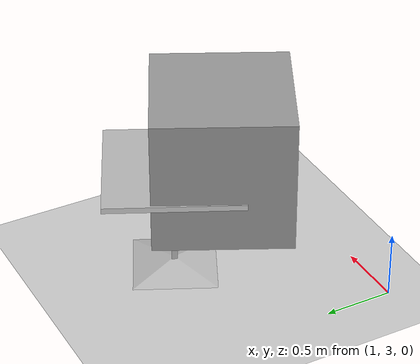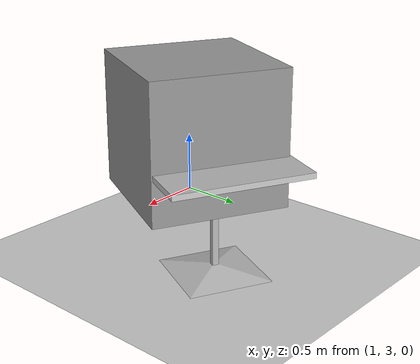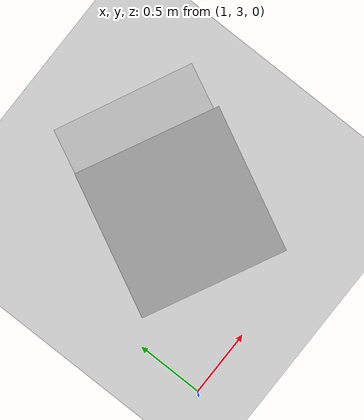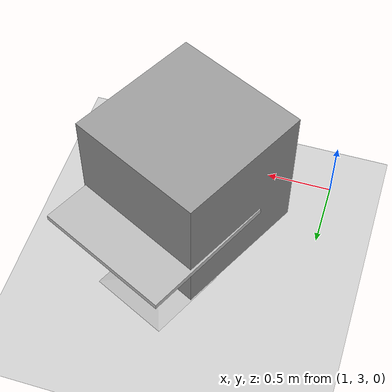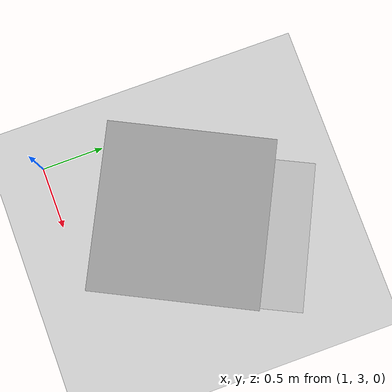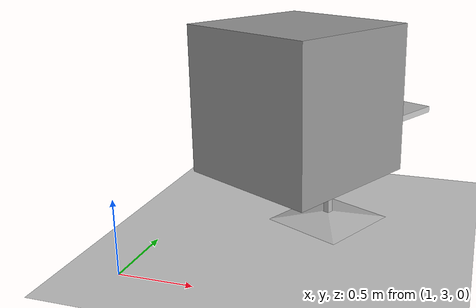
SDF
<sdf version="1.6">
 <world name="ArUco_world">
  <light name="sun" type="directional">
   <pose>0 0 10 0 -0 0</pose>
   <diffuse>0.8 0.8 0.8 1</diffuse>
   <specular>0.2 0.2 0.2 1</specular>
   <attenuation>
    <range>1000</range>
    <constant>0.9</constant>
    <linear>0.01</linear>
    <quadratic>0.001</quadratic>
   </attenuation>
   <direction>-0.5 0.1 -0.9</direction>
  </light>
  <model name="ground_plane">
   <static>1</static>
   <link name="link">
    <collision name="collision">
     <geometry><plane><normal>0 0 1</normal><size>100 100</size></plane></geometry>
     <surface><friction><ode><mu>100</mu><mu2>50</mu2></ode></friction></surface>
    </collision>
    <visual name="visual">
     <cast_shadows>0</cast_shadows>
     <geometry><plane><normal>0 0 1</normal><size>100 100</size></plane></geometry>
     <material>
      <script><uri>file://media/materials/scripts/gazebo.material</uri><name>Gazebo/Grey</name></script>
     </material>
    </visual>
   </link>
  </model>
  <gravity>0 0 -9.8</gravity>
  <magnetic_field>6e-06 2.3e-05 -4.2e-05</magnetic_field>
  <atmosphere type="adiabatic"/>
  <physics name="default_physics" default="0" type="ode">
   <max_step_size>0.001</max_step_size>
   <real_time_factor>1</real_time_factor>
   <real_time_update_rate>1000</real_time_update_rate>
  </physics>
  <scene><ambient>0.4 0.4 0.4 1</ambient><background>0.7 0.7 0.7 1</background><shadows>1</shadows></scene>
  <audio><device>default</device></audio>
  <spherical_coordinates>
   <surface_model>EARTH_WGS84</surface_model>
   <latitude_deg>0</latitude_deg>
   <longitude_deg>0</longitude_deg>
   <elevation>0</elevation>
   <heading_deg>0</heading_deg>
  </spherical_coordinates>
  <model name="cafe_table">
   <static>0</static>
   <link name="link">
    <collision name="surface">
     <pose>0 0 0.8305 0 -0 0</pose>
     <geometry><box><size>1.0043 1.0043 0.044</size></box></geometry>
    </collision>
    <collision name="column">
     <pose>0 0 0.407 0 -0 0</pose>
     <geometry><box><size>0.0462 0.0462 0.814</size></box></geometry>
    </collision>
    <collision name="base">
     <pose>0 0 0.022 0 -0 0</pose>
     <geometry><box><size>0.616 0.617 0.044</size></box></geometry>
    </collision>
    <visual name="visual">
     <geometry>
      <mesh><uri>model://cafe_table/meshes/cafe_table.dae</uri><scale>1.1 1.1 1.1</scale></mesh>
     </geometry>
    </visual>
    <inertial>
     <inertia><ixx>1</ixx><ixy>0</ixy><ixz>0</ixz><iyy>1</iyy><iyz>0</iyz><izz>1</izz></inertia>
     <mass>1</mass>
    </inertial>
   </link>
   <pose>2.03923 4.18601 0 0 0 -0.449017</pose>
  </model>
  <model name="Marker11">
   <static>1</static>
   <link name="link">
    <visual name="visual">
     <geometry><mesh><uri>model://marker11/meshes/Marker11.dae</uri><scale>0.28 0.28 0.28</scale></mesh></geometry>
    </visual>
   </link>
   <pose>1.86478 3.81801 0.917387 0 0 -2.02246</pose>
  </model>
  <model name="unit_box">
   <pose>1.8967 3.87485 0.976104 3.7e-05 1.6e-05 -0.462552</pose>
   <link name="unit_box::link">
    <inertial>
     <mass>1</mass>
     <inertia>
      <ixx>0.166667</ixx>
      <ixy>0</ixy>
      <ixz>0</ixz>
      <iyy>0.166667</iyy>
      <iyz>0</iyz>
      <izz>0.166667</izz>
     </inertia>
    </inertial>
    <collision name="collision"><geometry><box><size>0.999998 1 1</size></box></geometry></collision>
    <visual name="visual">
     <geometry><box><size>0.999998 1 1</size></box></geometry>
     <material>
      <script><name>Gazebo/Grey</name><uri>file://media/materials/scripts/gazebo.material</uri></script>
     </material>
    </visual>
   </link>
  </model>
 </world>
</sdf>
